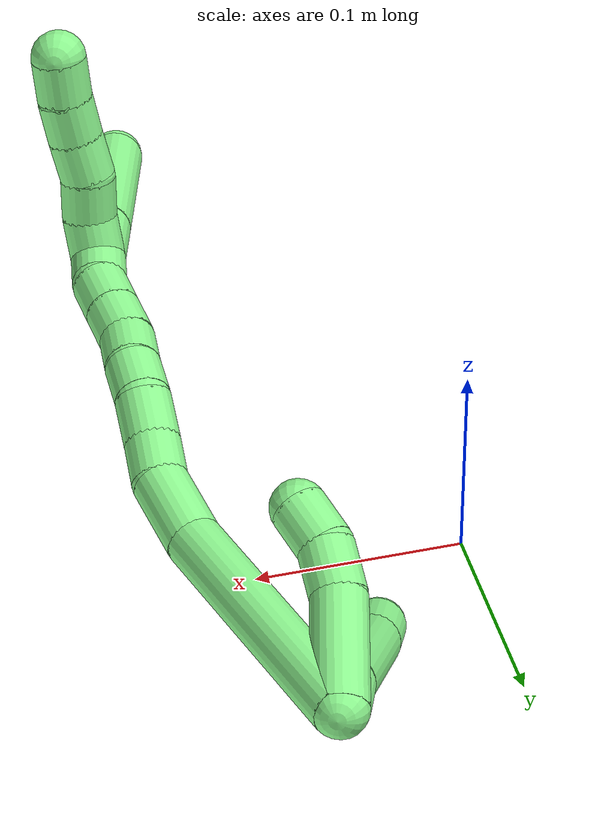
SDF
<sdf version="1.7">
 <world name="default">
  <model name="13">
   <static>0</static>
   <link name="13">
    <collision name="collision-cylinder-e_1_2_8">
     <pose>2.6e-05 1.7e-05 -0.012524 -3.14022 0.0021 -1.98177</pose>
     <geometry><cylinder><radius>0.0125</radius><length>0.025049</length></cylinder></geometry>
     <surface>
      <friction><ode><mu>1.16</mu><mu2>1.16</mu2><slip1>0</slip1><slip2>0</slip2></ode></friction>
      <contact><ode><kp>1e+06</kp><kd>1</kd><max_vel>0</max_vel><min_depth>0.001</min_depth></ode></contact>
     </surface>
    </collision>
    <visual name="visual-cylinder-e_1_2_8">
     <pose>2.6e-05 1.7e-05 -0.012524 -3.14022 0.0021 -1.98177</pose>
     <geometry><cylinder><radius>0.0125</radius><length>0.025049</length></cylinder></geometry>
     <material><ambient>0.564706 0.984314 0.572549 1</ambient></material>
    </visual>
    <collision name="collision-cylinder-e_2_8_9">
     <pose>0.006714 0.010002 -0.072291 -2.93365 0.137098 -1.16391</pose>
     <geometry><cylinder><radius>0.0125</radius><length>0.09748</length></cylinder></geometry>
     <surface>
      <friction><ode><mu>1.16</mu><mu2>1.16</mu2><slip1>0</slip1><slip2>0</slip2></ode></friction>
      <contact><ode><kp>1e+06</kp><kd>1</kd><max_vel>0</max_vel><min_depth>0.001</min_depth></ode></contact>
     </surface>
    </collision>
    <visual name="visual-cylinder-e_2_8_9">
     <pose>0.006714 0.010002 -0.072291 -2.93365 0.137098 -1.16391</pose>
     <geometry><cylinder><radius>0.0125</radius><length>0.09748</length></cylinder></geometry>
     <material><ambient>0.564706 0.984314 0.572549 1</ambient></material>
    </visual>
    <collision name="collision-cylinder-e_3_9_6">
     <pose>0.0146 0.021567 -0.133121 -3.02463 0.089276 -1.30344</pose>
     <geometry><cylinder><radius>0.0125</radius><length>0.027471</length></cylinder></geometry>
     <surface>
      <friction><ode><mu>1.16</mu><mu2>1.16</mu2><slip1>0</slip1><slip2>0</slip2></ode></friction>
      <contact><ode><kp>1e+06</kp><kd>1</kd><max_vel>0</max_vel><min_depth>0.001</min_depth></ode></contact>
     </surface>
    </collision>
    <visual name="visual-cylinder-e_3_9_6">
     <pose>0.0146 0.021567 -0.133121 -3.02463 0.089276 -1.30344</pose>
     <geometry><cylinder><radius>0.0125</radius><length>0.027471</length></cylinder></geometry>
     <material><ambient>0.564706 0.984314 0.572549 1</ambient></material>
    </visual>
    <collision name="collision-cylinder-e_1_2_10">
     <pose>-0.007667 -0.01288 -0.022581 2.62323 -0.286808 -0.997357</pose>
     <geometry><cylinder><radius>0.0125</radius><length>0.054205</length></cylinder></geometry>
     <surface>
      <friction><ode><mu>1.16</mu><mu2>1.16</mu2><slip1>0</slip1><slip2>0</slip2></ode></friction>
      <contact><ode><kp>1e+06</kp><kd>1</kd><max_vel>0</max_vel><min_depth>0.001</min_depth></ode></contact>
     </surface>
    </collision>
    <visual name="visual-cylinder-e_1_2_10">
     <pose>-0.007667 -0.01288 -0.022581 2.62323 -0.286808 -0.997357</pose>
     <geometry><cylinder><radius>0.0125</radius><length>0.054205</length></cylinder></geometry>
     <material><ambient>0.564706 0.984314 0.572549 1</ambient></material>
    </visual>
    <collision name="collision-cylinder-e_2_10_11">
     <pose>-0.017533 -0.033916 -0.053425 2.3627 -0.187158 -0.449634</pose>
     <geometry><cylinder><radius>0.0125</radius><length>0.023635</length></cylinder></geometry>
     <surface>
      <friction><ode><mu>1.16</mu><mu2>1.16</mu2><slip1>0</slip1><slip2>0</slip2></ode></friction>
      <contact><ode><kp>1e+06</kp><kd>1</kd><max_vel>0</max_vel><min_depth>0.001</min_depth></ode></contact>
     </surface>
    </collision>
    <visual name="visual-cylinder-e_2_10_11">
     <pose>-0.017533 -0.033916 -0.053425 2.3627 -0.187158 -0.449634</pose>
     <geometry><cylinder><radius>0.0125</radius><length>0.023635</length></cylinder></geometry>
     <material><ambient>0.564706 0.984314 0.572549 1</ambient></material>
    </visual>
    <collision name="collision-cylinder-e_3_11_5">
     <pose>-0.018369 -0.050479 -0.068776 2.27133 0.123359 0.264166</pose>
     <geometry><cylinder><radius>0.0125</radius><length>0.022159</length></cylinder></geometry>
     <surface>
      <friction><ode><mu>1.16</mu><mu2>1.16</mu2><slip1>0</slip1><slip2>0</slip2></ode></friction>
      <contact><ode><kp>1e+06</kp><kd>1</kd><max_vel>0</max_vel><min_depth>0.001</min_depth></ode></contact>
     </surface>
    </collision>
    <visual name="visual-cylinder-e_3_11_5">
     <pose>-0.018369 -0.050479 -0.068776 2.27133 0.123359 0.264166</pose>
     <geometry><cylinder><radius>0.0125</radius><length>0.022159</length></cylinder></geometry>
     <material><ambient>0.564706 0.984314 0.572549 1</ambient></material>
    </visual>
    <collision name="collision-cylinder-e_1_2_12">
     <pose>0.017045 -0.035181 -0.046601 2.49493 0.284021 0.806569</pose>
     <geometry><cylinder><radius>0.0125</radius><length>0.121653</length></cylinder></geometry>
     <surface>
      <friction><ode><mu>1.16</mu><mu2>1.16</mu2><slip1>0</slip1><slip2>0</slip2></ode></friction>
      <contact><ode><kp>1e+06</kp><kd>1</kd><max_vel>0</max_vel><min_depth>0.001</min_depth></ode></contact>
     </surface>
    </collision>
    <visual name="visual-cylinder-e_1_2_12">
     <pose>0.017045 -0.035181 -0.046601 2.49493 0.284021 0.806569</pose>
     <geometry><cylinder><radius>0.0125</radius><length>0.121653</length></cylinder></geometry>
     <material><ambient>0.564706 0.984314 0.572549 1</ambient></material>
    </visual>
    <collision name="collision-cylinder-e_2_12_13">
     <pose>0.035727 -0.082246 -0.10586 2.38773 0.094027 0.236591</pose>
     <geometry><cylinder><radius>0.0125</radius><length>0.034879</length></cylinder></geometry>
     <surface>
      <friction><ode><mu>1.16</mu><mu2>1.16</mu2><slip1>0</slip1><slip2>0</slip2></ode></friction>
      <contact><ode><kp>1e+06</kp><kd>1</kd><max_vel>0</max_vel><min_depth>0.001</min_depth></ode></contact>
     </surface>
    </collision>
    <visual name="visual-cylinder-e_2_12_13">
     <pose>0.035727 -0.082246 -0.10586 2.38773 0.094027 0.236591</pose>
     <geometry><cylinder><radius>0.0125</radius><length>0.034879</length></cylinder></geometry>
     <material><ambient>0.564706 0.984314 0.572549 1</ambient></material>
    </visual>
    <collision name="collision-cylinder-e_3_13_14">
     <pose>0.03575 -0.100203 -0.126607 2.49764 -0.158275 -0.466795</pose>
     <geometry><cylinder><radius>0.0125</radius><length>0.020487</length></cylinder></geometry>
     <surface>
      <friction><ode><mu>1.16</mu><mu2>1.16</mu2><slip1>0</slip1><slip2>0</slip2></ode></friction>
      <contact><ode><kp>1e+06</kp><kd>1</kd><max_vel>0</max_vel><min_depth>0.001</min_depth></ode></contact>
     </surface>
    </collision>
    <visual name="visual-cylinder-e_3_13_14">
     <pose>0.03575 -0.100203 -0.126607 2.49764 -0.158275 -0.466795</pose>
     <geometry><cylinder><radius>0.0125</radius><length>0.020487</length></cylinder></geometry>
     <material><ambient>0.564706 0.984314 0.572549 1</ambient></material>
    </visual>
    <collision name="collision-cylinder-e_4_14_15">
     <pose>0.031792 -0.113906 -0.142442 2.36369 -0.212267 -0.508638</pose>
     <geometry><cylinder><radius>0.0125</radius><length>0.022243</length></cylinder></geometry>
     <surface>
      <friction><ode><mu>1.16</mu><mu2>1.16</mu2><slip1>0</slip1><slip2>0</slip2></ode></friction>
      <contact><ode><kp>1e+06</kp><kd>1</kd><max_vel>0</max_vel><min_depth>0.001</min_depth></ode></contact>
     </surface>
    </collision>
    <visual name="visual-cylinder-e_4_14_15">
     <pose>0.031792 -0.113906 -0.142442 2.36369 -0.212267 -0.508638</pose>
     <geometry><cylinder><radius>0.0125</radius><length>0.022243</length></cylinder></geometry>
     <material><ambient>0.564706 0.984314 0.572549 1</ambient></material>
    </visual>
    <collision name="collision-cylinder-e_5_15_16">
     <pose>0.029385 -0.126895 -0.158959 2.59313 -0.006268 -0.02228</pose>
     <geometry><cylinder><radius>0.0125</radius><length>0.020561</length></cylinder></geometry>
     <surface>
      <friction><ode><mu>1.16</mu><mu2>1.16</mu2><slip1>0</slip1><slip2>0</slip2></ode></friction>
      <contact><ode><kp>1e+06</kp><kd>1</kd><max_vel>0</max_vel><min_depth>0.001</min_depth></ode></contact>
     </surface>
    </collision>
    <visual name="visual-cylinder-e_5_15_16">
     <pose>0.029385 -0.126895 -0.158959 2.59313 -0.006268 -0.02228</pose>
     <geometry><cylinder><radius>0.0125</radius><length>0.020561</length></cylinder></geometry>
     <material><ambient>0.564706 0.984314 0.572549 1</ambient></material>
    </visual>
    <collision name="collision-cylinder-e_6_16_17">
     <pose>0.029407 -0.136065 -0.176987 2.75109 0.008698 0.043976</pose>
     <geometry><cylinder><radius>0.0125</radius><length>0.020017</length></cylinder></geometry>
     <surface>
      <friction><ode><mu>1.16</mu><mu2>1.16</mu2><slip1>0</slip1><slip2>0</slip2></ode></friction>
      <contact><ode><kp>1e+06</kp><kd>1</kd><max_vel>0</max_vel><min_depth>0.001</min_depth></ode></contact>
     </surface>
    </collision>
    <visual name="visual-cylinder-e_6_16_17">
     <pose>0.029407 -0.136065 -0.176987 2.75109 0.008698 0.043976</pose>
     <geometry><cylinder><radius>0.0125</radius><length>0.020017</length></cylinder></geometry>
     <material><ambient>0.564706 0.984314 0.572549 1</ambient></material>
    </visual>
    <collision name="collision-cylinder-e_7_17_18">
     <pose>0.030539 -0.145357 -0.194559 2.5589 0.104476 0.345238</pose>
     <geometry><cylinder><radius>0.0125</radius><length>0.020033</length></cylinder></geometry>
     <surface>
      <friction><ode><mu>1.16</mu><mu2>1.16</mu2><slip1>0</slip1><slip2>0</slip2></ode></friction>
      <contact><ode><kp>1e+06</kp><kd>1</kd><max_vel>0</max_vel><min_depth>0.001</min_depth></ode></contact>
     </surface>
    </collision>
    <visual name="visual-cylinder-e_7_17_18">
     <pose>0.030539 -0.145357 -0.194559 2.5589 0.104476 0.345238</pose>
     <geometry><cylinder><radius>0.0125</radius><length>0.020033</length></cylinder></geometry>
     <material><ambient>0.564706 0.984314 0.572549 1</ambient></material>
    </visual>
    <collision name="collision-cylinder-e_8_18_19">
     <pose>0.032621 -0.156237 -0.211288 2.57095 0.103446 0.349383</pose>
     <geometry><cylinder><radius>0.0125</radius><length>0.020095</length></cylinder></geometry>
     <surface>
      <friction><ode><mu>1.16</mu><mu2>1.16</mu2><slip1>0</slip1><slip2>0</slip2></ode></friction>
      <contact><ode><kp>1e+06</kp><kd>1</kd><max_vel>0</max_vel><min_depth>0.001</min_depth></ode></contact>
     </surface>
    </collision>
    <visual name="visual-cylinder-e_8_18_19">
     <pose>0.032621 -0.156237 -0.211288 2.57095 0.103446 0.349383</pose>
     <geometry><cylinder><radius>0.0125</radius><length>0.020095</length></cylinder></geometry>
     <material><ambient>0.564706 0.984314 0.572549 1</ambient></material>
    </visual>
    <collision name="collision-cylinder-e_9_19_1">
     <pose>0.033097 -0.164958 -0.22913 2.80285 -0.056071 -0.325074</pose>
     <geometry><cylinder><radius>0.0125</radius><length>0.020031</length></cylinder></geometry>
     <surface>
      <friction><ode><mu>1.16</mu><mu2>1.16</mu2><slip1>0</slip1><slip2>0</slip2></ode></friction>
      <contact><ode><kp>1e+06</kp><kd>1</kd><max_vel>0</max_vel><min_depth>0.001</min_depth></ode></contact>
     </surface>
    </collision>
    <visual name="visual-cylinder-e_9_19_1">
     <pose>0.033097 -0.164958 -0.22913 2.80285 -0.056071 -0.325074</pose>
     <geometry><cylinder><radius>0.0125</radius><length>0.020031</length></cylinder></geometry>
     <material><ambient>0.564706 0.984314 0.572549 1</ambient></material>
    </visual>
    <collision name="collision-cylinder-e_1_1_20">
     <pose>0.03126 -0.170964 -0.251787 2.94144 -0.094239 -0.878097</pose>
     <geometry><cylinder><radius>0.0125</radius><length>0.027109</length></cylinder></geometry>
     <surface>
      <friction><ode><mu>1.16</mu><mu2>1.16</mu2><slip1>0</slip1><slip2>0</slip2></ode></friction>
      <contact><ode><kp>1e+06</kp><kd>1</kd><max_vel>0</max_vel><min_depth>0.001</min_depth></ode></contact>
     </surface>
    </collision>
    <visual name="visual-cylinder-e_1_1_20">
     <pose>0.03126 -0.170964 -0.251787 2.94144 -0.094239 -0.878097</pose>
     <geometry><cylinder><radius>0.0125</radius><length>0.027109</length></cylinder></geometry>
     <material><ambient>0.564706 0.984314 0.572549 1</ambient></material>
    </visual>
    <collision name="collision-cylinder-e_2_20_4">
     <pose>0.027942 -0.17979 -0.300877 2.97196 -0.056095 -0.637444</pose>
     <geometry><cylinder><radius>0.0125</radius><length>0.072891</length></cylinder></geometry>
     <surface>
      <friction><ode><mu>1.16</mu><mu2>1.16</mu2><slip1>0</slip1><slip2>0</slip2></ode></friction>
      <contact><ode><kp>1e+06</kp><kd>1</kd><max_vel>0</max_vel><min_depth>0.001</min_depth></ode></contact>
     </surface>
    </collision>
    <visual name="visual-cylinder-e_2_20_4">
     <pose>0.027942 -0.17979 -0.300877 2.97196 -0.056095 -0.637444</pose>
     <geometry><cylinder><radius>0.0125</radius><length>0.072891</length></cylinder></geometry>
     <material><ambient>0.564706 0.984314 0.572549 1</ambient></material>
    </visual>
    <collision name="collision-cylinder-e_1_1_21">
     <pose>0.02765 -0.176987 -0.239137 1.63683 -0.510514 -0.543746</pose>
     <geometry><cylinder><radius>0.0125</radius><length>0.02</length></cylinder></geometry>
     <surface>
      <friction><ode><mu>1.16</mu><mu2>1.16</mu2><slip1>0</slip1><slip2>0</slip2></ode></friction>
      <contact><ode><kp>1e+06</kp><kd>1</kd><max_vel>0</max_vel><min_depth>0.001</min_depth></ode></contact>
     </surface>
    </collision>
    <visual name="visual-cylinder-e_1_1_21">
     <pose>0.02765 -0.176987 -0.239137 1.63683 -0.510514 -0.543746</pose>
     <geometry><cylinder><radius>0.0125</radius><length>0.02</length></cylinder></geometry>
     <material><ambient>0.564706 0.984314 0.572549 1</ambient></material>
    </visual>
    <collision name="collision-cylinder-e_2_21_22">
     <pose>0.016351 -0.193204 -0.238142 1.36464 -0.696166 -0.573399</pose>
     <geometry><cylinder><radius>0.0125</radius><length>0.02</length></cylinder></geometry>
     <surface>
      <friction><ode><mu>1.16</mu><mu2>1.16</mu2><slip1>0</slip1><slip2>0</slip2></ode></friction>
      <contact><ode><kp>1e+06</kp><kd>1</kd><max_vel>0</max_vel><min_depth>0.001</min_depth></ode></contact>
     </surface>
    </collision>
    <visual name="visual-cylinder-e_2_21_22">
     <pose>0.016351 -0.193204 -0.238142 1.36464 -0.696166 -0.573399</pose>
     <geometry><cylinder><radius>0.0125</radius><length>0.02</length></cylinder></geometry>
     <material><ambient>0.564706 0.984314 0.572549 1</ambient></material>
    </visual>
    <collision name="collision-cylinder-e_3_22_23">
     <pose>0.005591 -0.209632 -0.235314 1.43065 -0.449678 -0.392302</pose>
     <geometry><cylinder><radius>0.0125</radius><length>0.02</length></cylinder></geometry>
     <surface>
      <friction><ode><mu>1.16</mu><mu2>1.16</mu2><slip1>0</slip1><slip2>0</slip2></ode></friction>
      <contact><ode><kp>1e+06</kp><kd>1</kd><max_vel>0</max_vel><min_depth>0.001</min_depth></ode></contact>
     </surface>
    </collision>
    <visual name="visual-cylinder-e_3_22_23">
     <pose>0.005591 -0.209632 -0.235314 1.43065 -0.449678 -0.392302</pose>
     <geometry><cylinder><radius>0.0125</radius><length>0.02</length></cylinder></geometry>
     <material><ambient>0.564706 0.984314 0.572549 1</ambient></material>
    </visual>
    <collision name="collision-cylinder-e_4_23_24">
     <pose>-0.00354 -0.227078 -0.231963 1.33014 -0.498829 -0.394338</pose>
     <geometry><cylinder><radius>0.0125</radius><length>0.02</length></cylinder></geometry>
     <surface>
      <friction><ode><mu>1.16</mu><mu2>1.16</mu2><slip1>0</slip1><slip2>0</slip2></ode></friction>
      <contact><ode><kp>1e+06</kp><kd>1</kd><max_vel>0</max_vel><min_depth>0.001</min_depth></ode></contact>
     </surface>
    </collision>
    <visual name="visual-cylinder-e_4_23_24">
     <pose>-0.00354 -0.227078 -0.231963 1.33014 -0.498829 -0.394338</pose>
     <geometry><cylinder><radius>0.0125</radius><length>0.02</length></cylinder></geometry>
     <material><ambient>0.564706 0.984314 0.572549 1</ambient></material>
    </visual>
    <collision name="collision-cylinder-e_5_24_3">
     <pose>-0.013954 -0.243677 -0.228094 1.35431 -0.598088 -0.485914</pose>
     <geometry><cylinder><radius>0.0125</radius><length>0.02</length></cylinder></geometry>
     <surface>
      <friction><ode><mu>1.16</mu><mu2>1.16</mu2><slip1>0</slip1><slip2>0</slip2></ode></friction>
      <contact><ode><kp>1e+06</kp><kd>1</kd><max_vel>0</max_vel><min_depth>0.001</min_depth></ode></contact>
     </surface>
    </collision>
    <visual name="visual-cylinder-e_5_24_3">
     <pose>-0.013954 -0.243677 -0.228094 1.35431 -0.598088 -0.485914</pose>
     <geometry><cylinder><radius>0.0125</radius><length>0.02</length></cylinder></geometry>
     <material><ambient>0.564706 0.984314 0.572549 1</ambient></material>
    </visual>
    <collision name="collision-sphere-3">
     <pose>-0.019585 -0.251749 -0.226319 0 -0 0</pose>
     <geometry><sphere><radius>0.0125</radius></sphere></geometry>
     <surface>
      <friction><ode><mu>1.16</mu><mu2>1.16</mu2><slip1>0</slip1><slip2>0</slip2></ode></friction>
      <contact><ode><kp>1e+06</kp><kd>1</kd><max_vel>0</max_vel><min_depth>0.001</min_depth></ode></contact>
     </surface>
    </collision>
    <visual name="visual-sphere-3">
     <pose>-0.019585 -0.251749 -0.226319 0 -0 0</pose>
     <geometry><sphere><radius>0.0125</radius></sphere></geometry>
     <material><ambient>0.564706 0.984314 0.572549 1</ambient></material>
    </visual>
    <collision name="collision-sphere-24">
     <pose>-0.008324 -0.235606 -0.22987 0 -0 0</pose>
     <geometry><sphere><radius>0.0125</radius></sphere></geometry>
     <surface>
      <friction><ode><mu>1.16</mu><mu2>1.16</mu2><slip1>0</slip1><slip2>0</slip2></ode></friction>
      <contact><ode><kp>1e+06</kp><kd>1</kd><max_vel>0</max_vel><min_depth>0.001</min_depth></ode></contact>
     </surface>
    </collision>
    <visual name="visual-sphere-24">
     <pose>-0.008324 -0.235606 -0.22987 0 -0 0</pose>
     <geometry><sphere><radius>0.0125</radius></sphere></geometry>
     <material><ambient>0.564706 0.984314 0.572549 1</ambient></material>
    </visual>
    <collision name="collision-sphere-23">
     <pose>0.001244 -0.21855 -0.234056 0 -0 0</pose>
     <geometry><sphere><radius>0.0125</radius></sphere></geometry>
     <surface>
      <friction><ode><mu>1.16</mu><mu2>1.16</mu2><slip1>0</slip1><slip2>0</slip2></ode></friction>
      <contact><ode><kp>1e+06</kp><kd>1</kd><max_vel>0</max_vel><min_depth>0.001</min_depth></ode></contact>
     </surface>
    </collision>
    <visual name="visual-sphere-23">
     <pose>0.001244 -0.21855 -0.234056 0 -0 0</pose>
     <geometry><sphere><radius>0.0125</radius></sphere></geometry>
     <material><ambient>0.564706 0.984314 0.572549 1</ambient></material>
    </visual>
    <collision name="collision-sphere-22">
     <pose>0.009938 -0.200714 -0.236572 0 -0 0</pose>
     <geometry><sphere><radius>0.0125</radius></sphere></geometry>
     <surface>
      <friction><ode><mu>1.16</mu><mu2>1.16</mu2><slip1>0</slip1><slip2>0</slip2></ode></friction>
      <contact><ode><kp>1e+06</kp><kd>1</kd><max_vel>0</max_vel><min_depth>0.001</min_depth></ode></contact>
     </surface>
    </collision>
    <visual name="visual-sphere-22">
     <pose>0.009938 -0.200714 -0.236572 0 -0 0</pose>
     <geometry><sphere><radius>0.0125</radius></sphere></geometry>
     <material><ambient>0.564706 0.984314 0.572549 1</ambient></material>
    </visual>
    <collision name="collision-sphere-21">
     <pose>0.022763 -0.185693 -0.239713 0 -0 0</pose>
     <geometry><sphere><radius>0.0125</radius></sphere></geometry>
     <surface>
      <friction><ode><mu>1.16</mu><mu2>1.16</mu2><slip1>0</slip1><slip2>0</slip2></ode></friction>
      <contact><ode><kp>1e+06</kp><kd>1</kd><max_vel>0</max_vel><min_depth>0.001</min_depth></ode></contact>
     </surface>
    </collision>
    <visual name="visual-sphere-21">
     <pose>0.022763 -0.185693 -0.239713 0 -0 0</pose>
     <geometry><sphere><radius>0.0125</radius></sphere></geometry>
     <material><ambient>0.564706 0.984314 0.572549 1</ambient></material>
    </visual>
    <collision name="collision-sphere-4">
     <pose>0.025898 -0.185933 -0.336743 0 -0 0</pose>
     <geometry><sphere><radius>0.0125</radius></sphere></geometry>
     <surface>
      <friction><ode><mu>1.16</mu><mu2>1.16</mu2><slip1>0</slip1><slip2>0</slip2></ode></friction>
      <contact><ode><kp>1e+06</kp><kd>1</kd><max_vel>0</max_vel><min_depth>0.001</min_depth></ode></contact>
     </surface>
    </collision>
    <visual name="visual-sphere-4">
     <pose>0.025898 -0.185933 -0.336743 0 -0 0</pose>
     <geometry><sphere><radius>0.0125</radius></sphere></geometry>
     <material><ambient>0.564706 0.984314 0.572549 1</ambient></material>
    </visual>
    <collision name="collision-sphere-20">
     <pose>0.029985 -0.173647 -0.265011 0 -0 0</pose>
     <geometry><sphere><radius>0.0125</radius></sphere></geometry>
     <surface>
      <friction><ode><mu>1.16</mu><mu2>1.16</mu2><slip1>0</slip1><slip2>0</slip2></ode></friction>
      <contact><ode><kp>1e+06</kp><kd>1</kd><max_vel>0</max_vel><min_depth>0.001</min_depth></ode></contact>
     </surface>
    </collision>
    <visual name="visual-sphere-20">
     <pose>0.029985 -0.173647 -0.265011 0 -0 0</pose>
     <geometry><sphere><radius>0.0125</radius></sphere></geometry>
     <material><ambient>0.564706 0.984314 0.572549 1</ambient></material>
    </visual>
    <collision name="collision-sphere-11">
     <pose>-0.019732 -0.042073 -0.061688 0 -0 0</pose>
     <geometry><sphere><radius>0.0125</radius></sphere></geometry>
     <surface>
      <friction><ode><mu>1.16</mu><mu2>1.16</mu2><slip1>0</slip1><slip2>0</slip2></ode></friction>
      <contact><ode><kp>1e+06</kp><kd>1</kd><max_vel>0</max_vel><min_depth>0.001</min_depth></ode></contact>
     </surface>
    </collision>
    <visual name="visual-sphere-11">
     <pose>-0.019732 -0.042073 -0.061688 0 -0 0</pose>
     <geometry><sphere><radius>0.0125</radius></sphere></geometry>
     <material><ambient>0.564706 0.984314 0.572549 1</ambient></material>
    </visual>
    <collision name="collision-sphere-10">
     <pose>-0.015334 -0.025759 -0.045161 0 -0 0</pose>
     <geometry><sphere><radius>0.0125</radius></sphere></geometry>
     <surface>
      <friction><ode><mu>1.16</mu><mu2>1.16</mu2><slip1>0</slip1><slip2>0</slip2></ode></friction>
      <contact><ode><kp>1e+06</kp><kd>1</kd><max_vel>0</max_vel><min_depth>0.001</min_depth></ode></contact>
     </surface>
    </collision>
    <visual name="visual-sphere-10">
     <pose>-0.015334 -0.025759 -0.045161 0 -0 0</pose>
     <geometry><sphere><radius>0.0125</radius></sphere></geometry>
     <material><ambient>0.564706 0.984314 0.572549 1</ambient></material>
    </visual>
    <collision name="collision-sphere-6">
     <pose>0.015824 0.023163 -0.146709 0 -0 0</pose>
     <geometry><sphere><radius>0.0125</radius></sphere></geometry>
     <surface>
      <friction><ode><mu>1.16</mu><mu2>1.16</mu2><slip1>0</slip1><slip2>0</slip2></ode></friction>
      <contact><ode><kp>1e+06</kp><kd>1</kd><max_vel>0</max_vel><min_depth>0.001</min_depth></ode></contact>
     </surface>
    </collision>
    <visual name="visual-sphere-6">
     <pose>0.015824 0.023163 -0.146709 0 -0 0</pose>
     <geometry><sphere><radius>0.0125</radius></sphere></geometry>
     <material><ambient>0.564706 0.984314 0.572549 1</ambient></material>
    </visual>
    <collision name="collision-sphere-9">
     <pose>0.013375 0.01997 -0.119534 0 -0 0</pose>
     <geometry><sphere><radius>0.0125</radius></sphere></geometry>
     <surface>
      <friction><ode><mu>1.16</mu><mu2>1.16</mu2><slip1>0</slip1><slip2>0</slip2></ode></friction>
      <contact><ode><kp>1e+06</kp><kd>1</kd><max_vel>0</max_vel><min_depth>0.001</min_depth></ode></contact>
     </surface>
    </collision>
    <visual name="visual-sphere-9">
     <pose>0.013375 0.01997 -0.119534 0 -0 0</pose>
     <geometry><sphere><radius>0.0125</radius></sphere></geometry>
     <material><ambient>0.564706 0.984314 0.572549 1</ambient></material>
    </visual>
    <collision name="collision-sphere-2">
     <geometry><sphere><radius>0.0125</radius></sphere></geometry>
     <surface>
      <friction><ode><mu>1.16</mu><mu2>1.16</mu2><slip1>0</slip1><slip2>0</slip2></ode></friction>
      <contact><ode><kp>1e+06</kp><kd>1</kd><max_vel>0</max_vel><min_depth>0.001</min_depth></ode></contact>
     </surface>
    </collision>
    <visual name="visual-sphere-2">
     <geometry><sphere><radius>0.0125</radius></sphere></geometry>
     <material><ambient>0.564706 0.984314 0.572549 1</ambient></material>
    </visual>
    <collision name="collision-sphere-19">
     <pose>0.033658 -0.161635 -0.219698 0 -0 0</pose>
     <geometry><sphere><radius>0.0125</radius></sphere></geometry>
     <surface>
      <friction><ode><mu>1.16</mu><mu2>1.16</mu2><slip1>0</slip1><slip2>0</slip2></ode></friction>
      <contact><ode><kp>1e+06</kp><kd>1</kd><max_vel>0</max_vel><min_depth>0.001</min_depth></ode></contact>
     </surface>
    </collision>
    <visual name="visual-sphere-19">
     <pose>0.033658 -0.161635 -0.219698 0 -0 0</pose>
     <geometry><sphere><radius>0.0125</radius></sphere></geometry>
     <material><ambient>0.564706 0.984314 0.572549 1</ambient></material>
    </visual>
    <collision name="collision-sphere-8">
     <pose>5.3e-05 3.4e-05 -0.025049 0 -0 0</pose>
     <geometry><sphere><radius>0.0125</radius></sphere></geometry>
     <surface>
      <friction><ode><mu>1.16</mu><mu2>1.16</mu2><slip1>0</slip1><slip2>0</slip2></ode></friction>
      <contact><ode><kp>1e+06</kp><kd>1</kd><max_vel>0</max_vel><min_depth>0.001</min_depth></ode></contact>
     </surface>
    </collision>
    <visual name="visual-sphere-8">
     <pose>5.3e-05 3.4e-05 -0.025049 0 -0 0</pose>
     <geometry><sphere><radius>0.0125</radius></sphere></geometry>
     <material><ambient>0.564706 0.984314 0.572549 1</ambient></material>
    </visual>
    <collision name="collision-sphere-5">
     <pose>-0.017005 -0.058885 -0.075864 0 -0 0</pose>
     <geometry><sphere><radius>0.0125</radius></sphere></geometry>
     <surface>
      <friction><ode><mu>1.16</mu><mu2>1.16</mu2><slip1>0</slip1><slip2>0</slip2></ode></friction>
      <contact><ode><kp>1e+06</kp><kd>1</kd><max_vel>0</max_vel><min_depth>0.001</min_depth></ode></contact>
     </surface>
    </collision>
    <visual name="visual-sphere-5">
     <pose>-0.017005 -0.058885 -0.075864 0 -0 0</pose>
     <geometry><sphere><radius>0.0125</radius></sphere></geometry>
     <material><ambient>0.564706 0.984314 0.572549 1</ambient></material>
    </visual>
    <collision name="collision-sphere-12">
     <pose>0.034089 -0.070362 -0.093201 0 -0 0</pose>
     <geometry><sphere><radius>0.0125</radius></sphere></geometry>
     <surface>
      <friction><ode><mu>1.16</mu><mu2>1.16</mu2><slip1>0</slip1><slip2>0</slip2></ode></friction>
      <contact><ode><kp>1e+06</kp><kd>1</kd><max_vel>0</max_vel><min_depth>0.001</min_depth></ode></contact>
     </surface>
    </collision>
    <visual name="visual-sphere-12">
     <pose>0.034089 -0.070362 -0.093201 0 -0 0</pose>
     <geometry><sphere><radius>0.0125</radius></sphere></geometry>
     <material><ambient>0.564706 0.984314 0.572549 1</ambient></material>
    </visual>
    <collision name="collision-sphere-13">
     <pose>0.037364 -0.09413 -0.118518 0 -0 0</pose>
     <geometry><sphere><radius>0.0125</radius></sphere></geometry>
     <surface>
      <friction><ode><mu>1.16</mu><mu2>1.16</mu2><slip1>0</slip1><slip2>0</slip2></ode></friction>
      <contact><ode><kp>1e+06</kp><kd>1</kd><max_vel>0</max_vel><min_depth>0.001</min_depth></ode></contact>
     </surface>
    </collision>
    <visual name="visual-sphere-13">
     <pose>0.037364 -0.09413 -0.118518 0 -0 0</pose>
     <geometry><sphere><radius>0.0125</radius></sphere></geometry>
     <material><ambient>0.564706 0.984314 0.572549 1</ambient></material>
    </visual>
    <collision name="collision-sphere-14">
     <pose>0.034135 -0.106276 -0.134697 0 -0 0</pose>
     <geometry><sphere><radius>0.0125</radius></sphere></geometry>
     <surface>
      <friction><ode><mu>1.16</mu><mu2>1.16</mu2><slip1>0</slip1><slip2>0</slip2></ode></friction>
      <contact><ode><kp>1e+06</kp><kd>1</kd><max_vel>0</max_vel><min_depth>0.001</min_depth></ode></contact>
     </surface>
    </collision>
    <visual name="visual-sphere-14">
     <pose>0.034135 -0.106276 -0.134697 0 -0 0</pose>
     <geometry><sphere><radius>0.0125</radius></sphere></geometry>
     <material><ambient>0.564706 0.984314 0.572549 1</ambient></material>
    </visual>
    <collision name="collision-sphere-15">
     <pose>0.029449 -0.121536 -0.150187 0 -0 0</pose>
     <geometry><sphere><radius>0.0125</radius></sphere></geometry>
     <surface>
      <friction><ode><mu>1.16</mu><mu2>1.16</mu2><slip1>0</slip1><slip2>0</slip2></ode></friction>
      <contact><ode><kp>1e+06</kp><kd>1</kd><max_vel>0</max_vel><min_depth>0.001</min_depth></ode></contact>
     </surface>
    </collision>
    <visual name="visual-sphere-15">
     <pose>0.029449 -0.121536 -0.150187 0 -0 0</pose>
     <geometry><sphere><radius>0.0125</radius></sphere></geometry>
     <material><ambient>0.564706 0.984314 0.572549 1</ambient></material>
    </visual>
    <collision name="collision-sphere-16">
     <pose>0.02932 -0.132255 -0.167732 0 -0 0</pose>
     <geometry><sphere><radius>0.0125</radius></sphere></geometry>
     <surface>
      <friction><ode><mu>1.16</mu><mu2>1.16</mu2><slip1>0</slip1><slip2>0</slip2></ode></friction>
      <contact><ode><kp>1e+06</kp><kd>1</kd><max_vel>0</max_vel><min_depth>0.001</min_depth></ode></contact>
     </surface>
    </collision>
    <visual name="visual-sphere-16">
     <pose>0.02932 -0.132255 -0.167732 0 -0 0</pose>
     <geometry><sphere><radius>0.0125</radius></sphere></geometry>
     <material><ambient>0.564706 0.984314 0.572549 1</ambient></material>
    </visual>
    <collision name="collision-sphere-17">
     <pose>0.029494 -0.139875 -0.186241 0 -0 0</pose>
     <geometry><sphere><radius>0.0125</radius></sphere></geometry>
     <surface>
      <friction><ode><mu>1.16</mu><mu2>1.16</mu2><slip1>0</slip1><slip2>0</slip2></ode></friction>
      <contact><ode><kp>1e+06</kp><kd>1</kd><max_vel>0</max_vel><min_depth>0.001</min_depth></ode></contact>
     </surface>
    </collision>
    <visual name="visual-sphere-17">
     <pose>0.029494 -0.139875 -0.186241 0 -0 0</pose>
     <geometry><sphere><radius>0.0125</radius></sphere></geometry>
     <material><ambient>0.564706 0.984314 0.572549 1</ambient></material>
    </visual>
    <collision name="collision-sphere-18">
     <pose>0.031583 -0.150838 -0.202877 0 -0 0</pose>
     <geometry><sphere><radius>0.0125</radius></sphere></geometry>
     <surface>
      <friction><ode><mu>1.16</mu><mu2>1.16</mu2><slip1>0</slip1><slip2>0</slip2></ode></friction>
      <contact><ode><kp>1e+06</kp><kd>1</kd><max_vel>0</max_vel><min_depth>0.001</min_depth></ode></contact>
     </surface>
    </collision>
    <visual name="visual-sphere-18">
     <pose>0.031583 -0.150838 -0.202877 0 -0 0</pose>
     <geometry><sphere><radius>0.0125</radius></sphere></geometry>
     <material><ambient>0.564706 0.984314 0.572549 1</ambient></material>
    </visual>
    <collision name="collision-sphere-1">
     <pose>0.032536 -0.168281 -0.238562 0 -0 0</pose>
     <geometry><sphere><radius>0.0125</radius></sphere></geometry>
     <surface>
      <friction><ode><mu>1.16</mu><mu2>1.16</mu2><slip1>0</slip1><slip2>0</slip2></ode></friction>
      <contact><ode><kp>1e+06</kp><kd>1</kd><max_vel>0</max_vel><min_depth>0.001</min_depth></ode></contact>
     </surface>
    </collision>
    <visual name="visual-sphere-1">
     <pose>0.032536 -0.168281 -0.238562 0 -0 0</pose>
     <geometry><sphere><radius>0.0125</radius></sphere></geometry>
     <material><ambient>0.564706 0.984314 0.572549 1</ambient></material>
    </visual>
    <inertial>
     <pose>0.01497 -0.088301 -0.135875 0 -0 0</pose>
     <mass>0.75</mass>
     <inertia>
      <ixx>0.000184</ixx>
      <ixy>0</ixy>
      <ixz>0</ixz>
      <iyy>-0.000175</iyy>
      <iyz>0</iyz>
      <izz>1.7e-05</izz>
     </inertia>
    </inertial>
   </link>
   <pose>0.118255 0.21404 0.123335 -1.13441 0.693129 -0.078819</pose>
  </model>
 </world>
</sdf>
